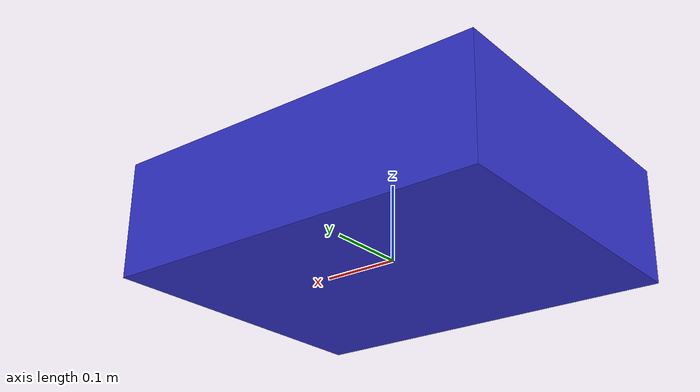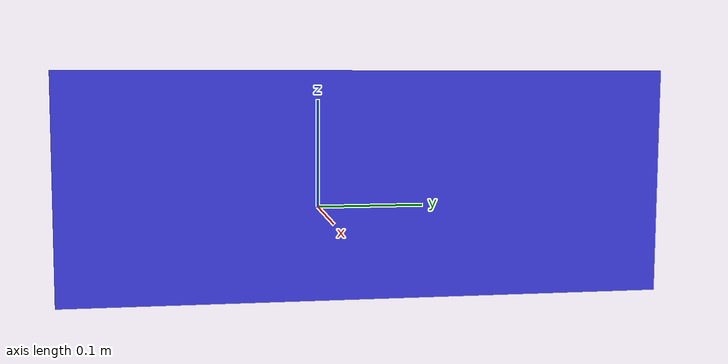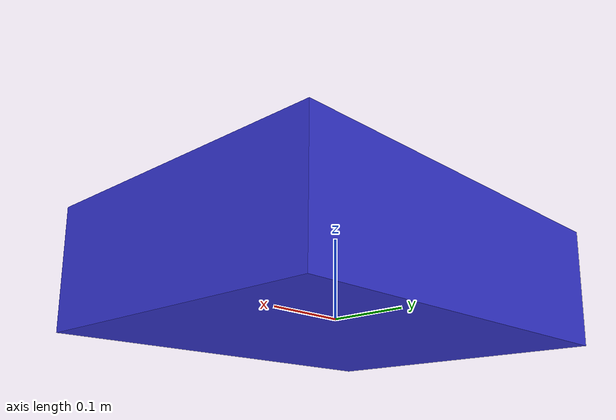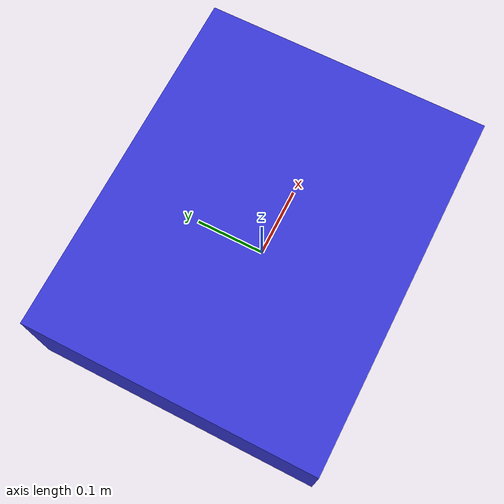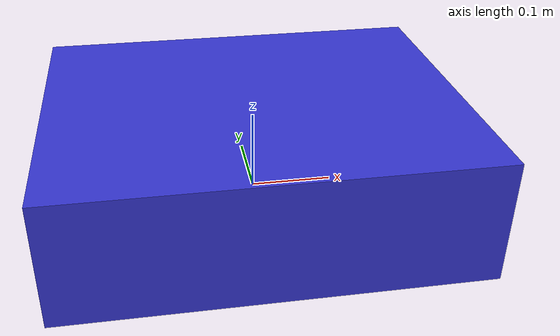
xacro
<?xml version="1.0"?>
<robot name="omni_planar_robot" xmlns:xacro="http://www.ros.org/wiki/xacro">

  <!-- 1. 定義顏色材料 (僅供 Gazebo 與 Rviz 視覺化) -->
  <material name="blue">
    <color rgba="0.2 0.2 0.8 1.0"/>
  </material>

  <!-- 2. 世界原點虛擬連接點 (ROS 2 導航與模擬必備) -->
  <link name="base_footprint"/>

  <joint name="base_footprint_joint" type="fixed">
    <parent link="base_footprint"/>
    <child link="base_link"/>
    <!-- 將實體離地抬高 5 公分，避免底盤沉入 Gazebo 地板 -->
    <origin xyz="0 0 0.05" rpy="0 0 0"/>
  </joint>

  <!-- 3. 機器人主車體 (Base Link) -->
  <link name="base_link">
    <!-- 視覺外觀 -->
    <visual>
      <origin xyz="0 0 0" rpy="0 0 0"/>
      <geometry>
        <!-- 一個長 50cm、寬 40cm、高 15cm 的方塊底盤 -->
        <box size="0.5 0.4 0.15"/>
      </geometry>
      <material name="blue"/>
    </visual>

    <!-- 物理碰撞屬性 -->
    <collision>
      <origin xyz="0 0 0" rpy="0 0 0"/>
      <geometry>
        <box size="0.5 0.4 0.15"/>
      </geometry>
    </collision>

    <!-- 物理慣性矩 (質量、轉動慣量，Gazebo 引擎計算物理基礎) -->
    <inertial>
      <origin xyz="0 0 0" rpy="0 0 0"/>
      <mass value="15.0"/> <!-- 假設車重 15 公斤 -->
      <inertia ixx="0.2281" ixy="0.0" ixz="0.0"
               iyy="0.3406" iyz="0.0"
               izz="0.5125"/>
    </inertial>
  </link>

  <!-- 4. 核心：掛載萬能全向平面移動插件 -->
  <gazebo>
    <plugin name="omni_planar_move" filename="libgazebo_ros_planar_move.so">
      <!-- 調整 ROS 2 命名空間，讓對接更穩固 -->
      <ros>
        <!-- 這裡直接做 Remap (重映射)，強迫把預設的 /cmd_vel 和 /odom 改成你的 /robot/... -->
        <remapping>cmd_vel:=/robot/cmd_vel</remapping>
        <remapping>odom:=/robot/pose</remapping>
      </ros>

      <!-- 更新頻率 -->
      <update_rate>50.0</update_rate>

      <!-- 綁定機器人的核心骨架（改用底層 footprint 或是 base_link） -->
      <robot_base_frame>base_footprint</robot_base_frame>

      <!-- 是否要發布 TF 轉換 (odom -> base_footprint) -->
      <publish_odom>true</publish_odom>
      <publish_odom_tf>true</publish_odom_tf>

      <!-- 座標系定義 -->
      <odometry_frame>odom</odometry_frame>
    </plugin>
  </gazebo>

</robot>
